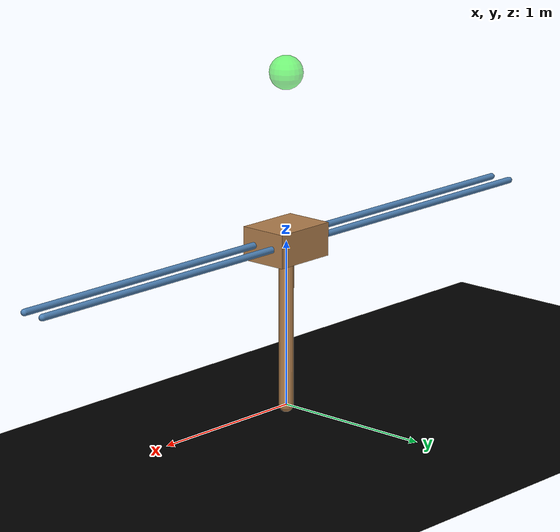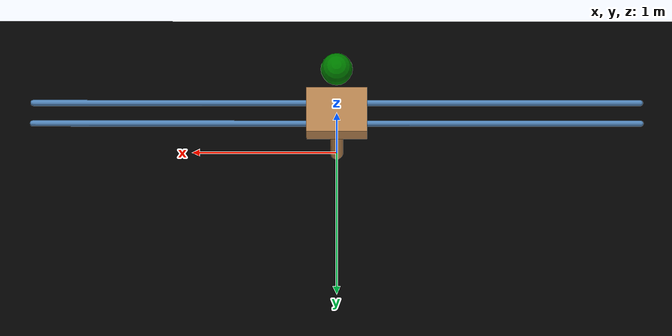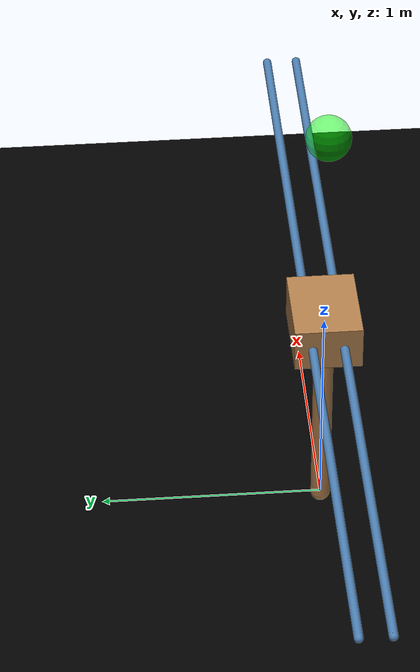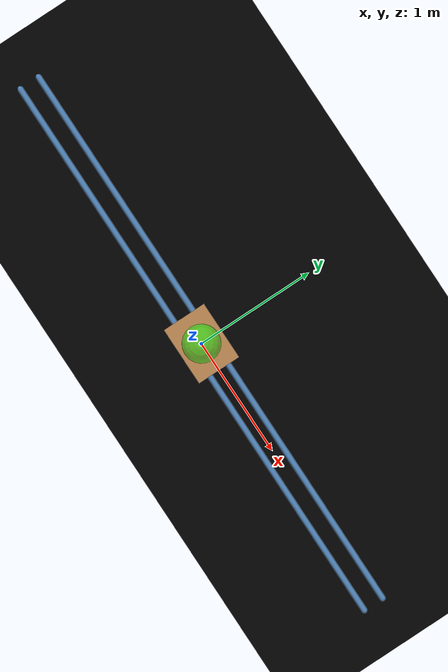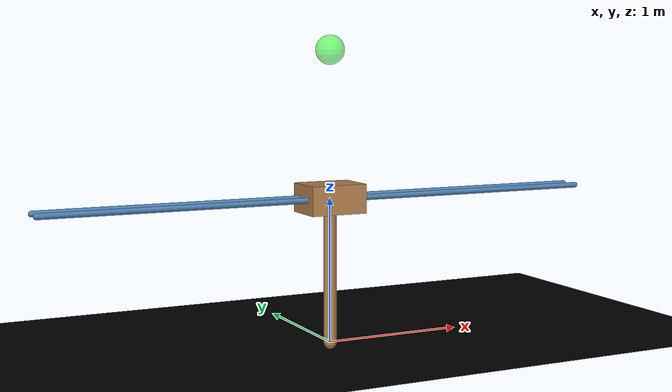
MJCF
<mujoco model="Cart-Pole Swing-Up">
  <include file="../common.xml"/>
  <include file="cartpole.xml" />

  <size memory="4K"/>

  <custom>
    <!-- agent -->
    <numeric name="agent_planner" data="1" />
    <numeric name="agent_horizon" data="1.0" />
    <numeric name="agent_timestep" data="0.01" />
    <numeric name="sampling_sample_width" data="0.01" />
    <numeric name="sampling_control_width" data="0.015" />
    <numeric name="sampling_spline_points" data="10" />
    <numeric name="sampling_exploration" data="0.5" />
    <numeric name="gradient_spline_points" data="10" />
    <numeric name="residual_Goal" data="0.0 -1.5 1.5" />

    <!-- estimator -->
    <numeric name="estimator" data="0" />
    <numeric name="estimator_sensor_start" data="4" />
    <numeric name="estimator_number_sensor" data="4" />
  </custom>

  <sensor>
    <!-- cost -->
    <user name="Vertical" dim="1" user="6 10.0 0 100.0 0.01"/>
    <user name="Centered" dim="1" user="6 10.0 0 100.0 0.1"/>
    <user name="Velocity" dim="1" user="0 0.1 0.0 1.0"/>
    <user name="Control" dim="1" user="0 0.1 0.0 1.0"/>

    <!-- estimator -->
    <jointpos name="slider_pos" joint="slider"/>
    <jointpos name="hinge_pos" joint="hinge_1"/>

    <jointvel name="vslider_pos" joint="slider"/>
    <jointvel name="vhinge_pos" joint="hinge_1"/>

    <!-- trace -->
    <framepos name="trace0" objtype="site" objname="tip"/>

    <!-- residual -->
    <framepos name="position" objtype="site" objname="tip"/>
    <framelinvel name="velocity" objtype="site" objname="tip"/>
  </sensor>
</mujoco>

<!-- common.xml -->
<mujoco>

  <visual>
    <headlight ambient=".4 .4 .4" diffuse=".8 .8 .8" specular="0.1 0.1 0.1"/>
    <map znear=".01"/>
    <quality shadowsize="2048"/>
    <global elevation="-15"/>
  </visual>

  <asset>
    <texture name="blue_grid" type="2d" builtin="checker" rgb1=".02 .14 .44" rgb2=".27 .55 1" width="300" height="300" mark="edge" markrgb="1 1 1"/>
    <material name="blue_grid" texture="blue_grid" texrepeat="1 1" texuniform="true" reflectance=".2"/>

    <texture name="grey_grid" type="2d" builtin="checker" rgb1=".26 .26 .26" rgb2=".6 .6 .6" width="300" height="300" mark="edge" markrgb="1 1 1"/>
    <material name="grey_grid" texture="blue_grid" texrepeat="1 1" texuniform="true" reflectance=".2"/>
    <texture name="skybox" type="skybox" builtin="gradient" rgb1=".66 .79 1" rgb2=".9 .91 .93" width="800" height="800"/>

    <material name="self" rgba=".7 .5 .3 1"/>
    <material name="self_default" rgba=".7 .5 .3 1"/>
    <material name="self_highlight" rgba="0 .5 .3 1"/>
    <material name="effector" rgba=".7 .4 .2 1"/>
    <material name="effector_default" rgba=".7 .4 .2 1"/>
    <material name="effector_highlight" rgba="0 .5 .3 1"/>
    <material name="decoration" rgba=".2 .6 .3 1"/>
    <material name="eye" rgba="0 .2 1 1"/>
    <material name="target" rgba=".6 .3 .3 1"/>
    <material name="target_default" rgba=".6 .3 .3 1"/>
    <material name="target_highlight" rgba=".6 .3 .3 .4"/>
    <material name="site" rgba=".5 .5 .5 .3"/>
  </asset>
</mujoco>

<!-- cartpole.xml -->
<mujoco model="Cart-Pole">
  <option timestep="0.01" integrator="RK4" gravity="0 0 -10">
    <flag contact="disable" energy="enable"/>
  </option>

  <default>
    <default class="pole">
      <joint type="hinge" axis="0 1 0"  damping="2e-6"/>
      <geom type="capsule" fromto="0 0 0 0 0 -1" size="0.045" material="self" mass=".1"/>
    </default>
  </default>

  <visual>
    <headlight ambient=".4 .4 .4" diffuse=".8 .8 .8" specular="0.1 0.1 0.1"/>
    <map znear=".01"/>
    <quality shadowsize="2048"/>
  </visual>

  <asset>
    <texture name="grid" type="2d" builtin="checker" rgb1="0 0 0" rgb2="0 0 0" width="300" height="300" mark="edge" markrgb="1 1 1"/>
    <material name="grid" texture="grid" texrepeat="3 3" texuniform="true" reflectance=".2"/>
    <material name="self" rgba=".7 .5 .3 1"/>
    <material name="decoration" rgba=".3 .5 .7 1"/>
    <material name="target" rgba="0 1 0 0.5"/>
  </asset>

  <worldbody>
    <body name="goal" mocap="true" pos="0 0 2" quat="1 0 0 0">
        <geom type="sphere" size=".1" contype="0" conaffinity="0" rgba="0 1 0 .5"/>
    </body>
    <light name="light" pos="0 0 6"/>
    <camera name="fixed" pos="0 -4 1" zaxis="0 -1 0"/>
    <camera name="lookatcart" mode="targetbody" target="cart" pos="0 -2 2"/>
    <geom name="floor" pos="0 0 -.05" size="4 4 .2" type="plane" material="grid"/>
    <geom name="rail1" type="capsule" pos="0  .07 1" zaxis="1 0 0" size="0.02 2" material="decoration" />
    <geom name="rail2" type="capsule" pos="0 -.07 1" zaxis="1 0 0" size="0.02 2" material="decoration" />
    <body name="cart" pos="0 0 1">
      <joint name="slider" type="slide" limited="true" axis="1 0 0" range="-1.8 1.8" solreflimit=".08 1" damping="1.0e-4"/>
      <geom name="cart" type="box" size="0.2 0.15 0.1" material="self"  mass="1"/>
      <body name="pole_1" childclass="pole">
        <joint name="hinge_1" damping="1.0e-4"/>
        <geom name="pole_1"/>
        <site name="tip" pos="0 0 -1"/>
      </body>
    </body>
  </worldbody>

  <actuator>
    <motor name="slide" joint="slider" gear="10" ctrllimited="true" ctrlrange="-1 1" />
  </actuator>
</mujoco>
